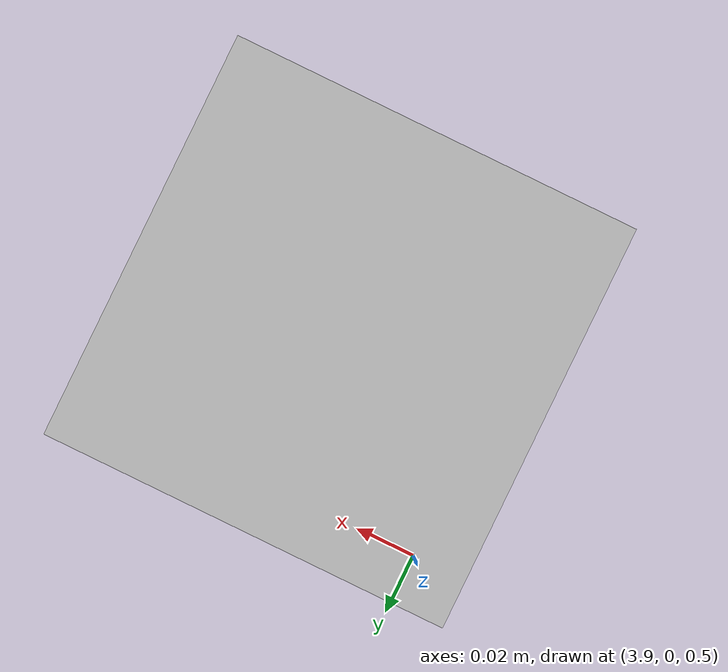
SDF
<?xml version="1.0" ?>
<sdf version="1.6">
    <model name="model_with_lidar">
        <pose>4 0 0.5 0 0.0 3.14</pose>
        <link name="link">
            <pose>0.05 0.05 0.05 0 0 0</pose>
            <inertial>
                <mass>0.1</mass>
                <inertia>
                    <ixx>0.000166667</ixx>
                    <iyy>0.000166667</iyy>
                    <izz>0.000166667</izz>
                </inertia>
            </inertial>
            <collision name="collision">
                <geometry>
                    <box>
                        <size>0.1 0.1 0.1</size>
                    </box>
                </geometry>
            </collision>
            <visual name="visual">
                <geometry>
                    <box>
                        <size>0.1 0.1 0.1</size>
                    </box>
                </geometry>
            </visual>

            <sensor name='gpu_lidar' type='gpu_lidar'>
                <topic>lidar</topic>
                <update_rate>10</update_rate>
                <lidar>
                    <scan>
                        <horizontal>
                            <samples>640</samples>
                            <resolution>1</resolution>
                            <min_angle>-1.396263</min_angle>
                            <max_angle>1.396263</max_angle>
                        </horizontal>
                        <vertical>
                            <samples>16</samples>
                            <resolution>1</resolution>
                            <min_angle>-0.261799</min_angle>
                            <max_angle>0.261799</max_angle>
                        </vertical>
                    </scan>
                    <range>
                        <min>0.08</min>
                        <max>10.0</max>
                        <resolution>0.01</resolution>
                    </range>
                </lidar>
                <alwaysOn>1</alwaysOn>
                <visualize>true</visualize>
            </sensor>
        </link>

        <static>true</static>
    </model>
</sdf>
